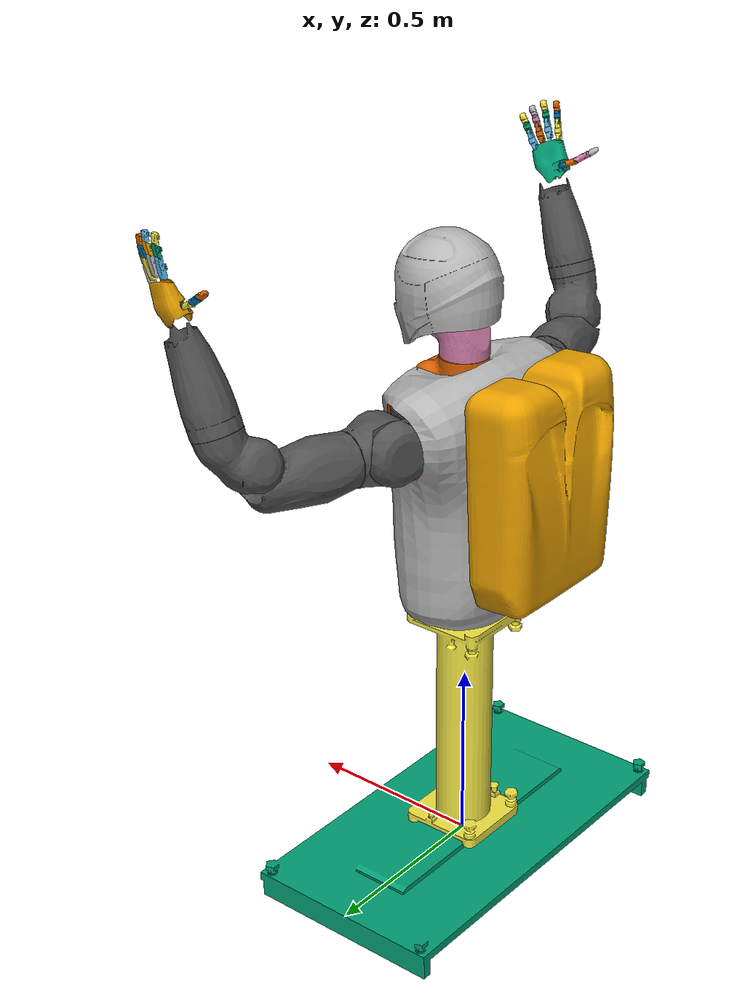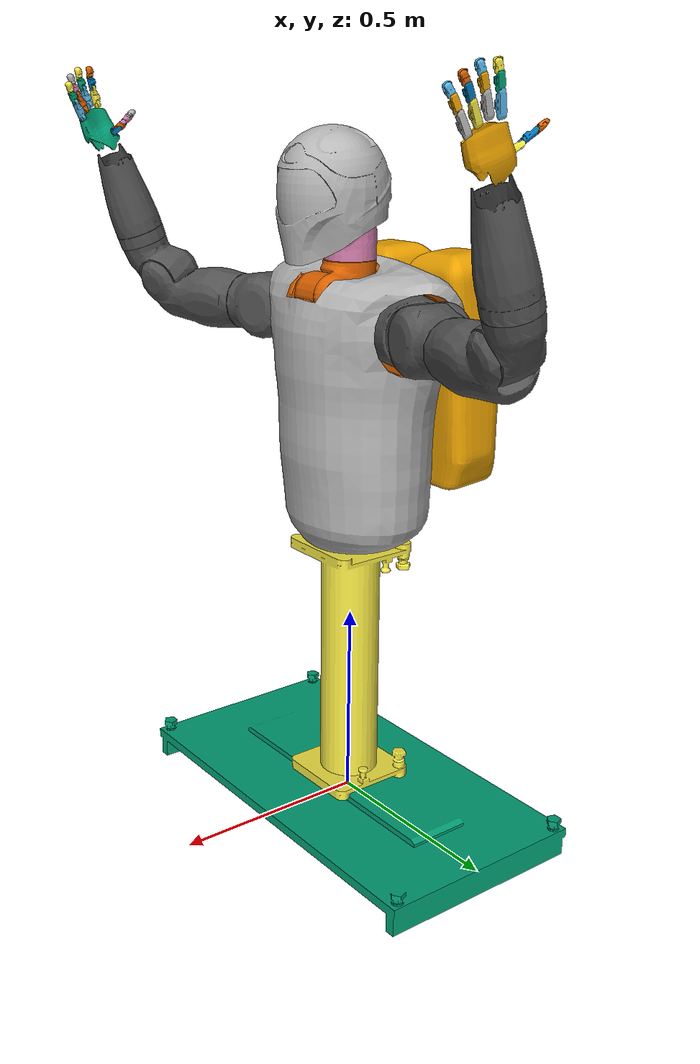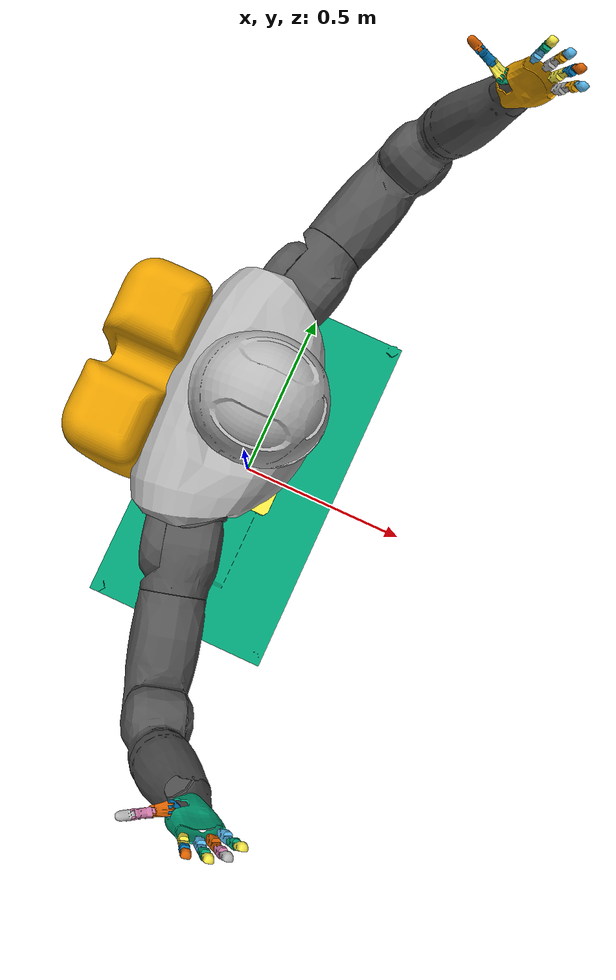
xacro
<?xml version="1.0" ?>

<robot name="r2" xmlns:controller="http://www.ros.org/wiki/controller"
			xmlns:interface="http://www.ros.org/wiki/interface"
			xmlns:sensor="http://www.ros.org/wiki/sensor"
			xmlns:xacro="http://www.ros.org/wiki/xacro">

  <xacro:property name="robot_name" value= "/r2/"/>

  <include filename="$(find r2_description)/robots/r2.urdf.xacro" />

  <include filename="$(find r2_description)/urdf/r2.gazebo.xacro" />
  <include filename="$(find r2_description)/urdf/sensors/r2.gazebo.sensors.xacro" />

  <include filename="$(find r2_description)/urdf/gazebo_plugins/r2.transmissions.xacro" />
  <include filename="$(find r2_description)/urdf/gazebo_plugins/r2.gazebo.controller.xacro" />

</robot>

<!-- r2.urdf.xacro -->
<robot name="r2" xmlns:xacro="http://www.ros.org/wiki/xacro">

  <xacro:property name="robot_name" value= "/r2/"/>

  <include filename="$(find r2_description)/urdf/models/r2.common.xacro" />
  <include filename="$(find r2_description)/urdf/models/r2.base.xacro" />

  <include filename="$(find r2_description)/urdf/models/r2.body.xacro" />
  <include filename="$(find r2_description)/urdf/models/r2.head.xacro" />

  <include filename="$(find r2_description)/urdf/models/r2.left_arm.xacro" />
  <include filename="$(find r2_description)/urdf/models/r2.left_hand.xacro" />

  <include filename="$(find r2_description)/urdf/models/r2.right_arm.xacro" />
  <include filename="$(find r2_description)/urdf/models/r2.right_hand.xacro" />

</robot>

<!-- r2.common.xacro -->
<robot>

  <material name="white">
    <color rgba="1.0 1.0 1.0 1.0"/>
  </material>

  <material name="dirty_white">
    <color rgba="0.322 0.322 0.322 1.0"/>
  </material>

  <material name="gold">
    <color rgba=".878 .49 0.008 1"/>
  </material>

  <material name="steel">
    <color rgba=".7 .7 .7 1"/>
  </material>

  <material name="blue">
    <color rgba="0 0 0.8 1"/>
  </material>

  <macro name="non_visual_link" params="name">
    <link name="${name}">
      <inertial>
        <mass value="0.01"/>
        <inertia ixx="0.0001" ixy="0.0" ixz="0.0" iyy="0.0001" iyz="0.0" izz="0.0001"/>
      </inertial>
    </link>
  </macro>

</robot>

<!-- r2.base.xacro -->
<robot>

  <link name="world"/>

  <joint name="${robot_name}fixed/world/robot_world" type="fixed">
    <parent link="world"/>
    <child link="${robot_name}robot_world"/>
    <origin rpy="0.0 0.0 0.0" xyz="0.0 0.0 0.0"/>
  </joint>

  <link name="${robot_name}robot_world">
    <inertial>
      <mass value="1"/>
      <inertia ixx="1" ixy="0.0" ixz="0.0" iyy="1" iyz="0.0" izz="1"/>
    </inertial>
  </link>

  <joint name="${robot_name}fixed/robot_world/baseplate" type="fixed">
    <parent link="${robot_name}robot_world"/>
    <child link="${robot_name}baseplate"/>
    <origin rpy="0.0 0 3.14159" xyz="0.0 0.0 0.0"/>
  </joint>

  <link name="${robot_name}baseplate">
    <visual>
      <geometry>
        <mesh filename="package://r2_description/meshes/Stanchion_Baseplate.dae"/>
      </geometry>
      <origin xyz="0.0 0.0 0.0" rpy="1.57 0 1.57"/>
    </visual>
    <collision>
      <geometry>
        <mesh filename="package://r2_description/meshes/Stanchion_Baseplate.dae" scale=".01 .01 .01"/>
      </geometry>
      <origin xyz="0.0 0.0 0.0" rpy="1.57 0 1.57"/>
    </collision>
    <inertial>
      <mass value="5"/>
      <inertia ixx="1" ixy="0.0" ixz="0.0" iyy="1" iyz="0.0" izz="1"/>
    </inertial>
  </link>

  <joint name="${robot_name}fixed/baseplate/stanchion" type="fixed">
    <parent link="${robot_name}baseplate"/>
    <child link="${robot_name}stanchion"/>
    <origin rpy="0 0 3.14159" xyz="0.0 0.0 .70"/>
  </joint>

  <link name="${robot_name}stanchion">
    <visual>
      <geometry>
        <mesh filename="package://r2_description/meshes/Stanchion.dae"/>
      </geometry>
      <origin xyz="0.0 0.0 0.0" rpy="0 0 0"/>
    </visual>
    <collision>
      <geometry>
        <cylinder length="0.5" radius=".075"/>
      </geometry>
      <origin xyz="0.0 0.0 -0.3" rpy="0 0 0"/>
    </collision>
    <inertial>
      <mass value="50"/>
      <inertia ixx="10" ixy="0.0" ixz="0.0" iyy="10" iyz="0.0" izz="10"/>
    </inertial>
  </link>

  <joint name="${robot_name}fixed/stanchion/robot_base" type="fixed">
    <parent link="${robot_name}stanchion"/>
    <child link="${robot_name}robot_base"/>
   <origin rpy="0 3.14 3.14" xyz="0.0 0.0 0.02"/>
  </joint>

  <non_visual_link name="${robot_name}robot_base"/>

</robot>

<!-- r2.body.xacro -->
<robot>

  <property name="waist_j0_damping" value= "10.0" />
  <property name="waist_j0_friction" value= "0.0" />

  <joint name="${robot_name}waist/joint0" type="revolute">
    <parent link="${robot_name}robot_base"/>
    <child link="${robot_name}waist_center"/>
    <axis xyz="0 0 1"/>
    <origin rpy="0.0 0 0.0" xyz="0.0 0.0 0.0"/>
    <dynamics damping="${waist_j0_damping}" friction="${waist_j0_friction}"/>
    <limit effort="10000000.0" lower="-3.14" upper="3.14" velocity="1000"/>
  </joint>

  <link name="${robot_name}waist_center">
    <visual>
      <geometry>
         <mesh filename="package://r2_description/meshes/Body.dae"/>
      </geometry>
      <origin rpy="-1.57 0 -1.57" xyz="0.02 0.05 -0.5625"/>
    </visual>
    <collision>
      <geometry>
         <mesh filename="package://r2_description/meshes/Body.dae"/>
      </geometry>
      <origin rpy="-1.57 0 -1.57" xyz="0.02 0.05 -0.5625"/>
    </collision>
    <inertial>
      <mass value="10"/>
      <inertia ixx="1" ixy="0.0" ixz="0.0" iyy="1" iyz="0.0" izz="1"/>
    </inertial>
   </link>

  <joint name="${robot_name}fixed/waist_center/robot_reference" type="fixed">
    <parent link="${robot_name}waist_center"/>
    <child link="${robot_name}robot_reference"/>
    <origin rpy="0.0 0 0.0" xyz="0.1234 0.0 0.0"/>
  </joint>

  <joint name="${robot_name}fixed/waist_center/body_cover" type="fixed">
    <parent link="${robot_name}waist_center"/>
    <child link="${robot_name}body_cover"/>
    <origin rpy="0.0 0.0 0.0" xyz="0 0.0 0.0"/>
  </joint>

  <joint name="${robot_name}fixed/waist_center/backpack" type="fixed">
    <parent link="${robot_name}waist_center"/>
    <child link="${robot_name}backpack"/>
    <origin rpy="0.0 0.0 0.0" xyz="0 0.0 0.0"/>
  </joint>

  <joint name="${robot_name}fixed/waist_center/chest_center" type="fixed">
    <parent link="${robot_name}waist_center"/>
    <child link="${robot_name}chest_center"/>
    <origin rpy="0.0 0.0 0.0" xyz="-0.01235 0.0 0.0"/>
  </joint>

  <joint name="${robot_name}fixed/waist_center/left_shoulder_jr3" type="fixed">
    <parent link="${robot_name}waist_center"/>
    <child link="${robot_name}left_shoulder_jr3"/>
    <origin rpy="0.0 -0.0 0.0 " xyz="-0.0240898 -0.0996837 -0.413899"/>
  </joint>

  <joint name="${robot_name}fixed/waist_center/right_shoulder_jr3" type="fixed">
    <parent link="${robot_name}waist_center"/>
    <child link="${robot_name}right_shoulder_jr3"/>
    <origin rpy="0.0 -0.0 0.0 " xyz="-0.0240898 0.0996837 -0.413899"/>
  </joint>

  <non_visual_link name="${robot_name}robot_reference"/>

  <link name="${robot_name}body_cover">
    <visual>
      <geometry>
         <mesh filename="package://r2_description/meshes/Body_Cover.dae"/>
      </geometry>
      <origin rpy="-1.57 0 -1.57" xyz="0.02 0.05 -0.5625"/>
    </visual>
    <collision>
      <geometry>
         <mesh filename="package://r2_description/meshes/Body_Cover.dae"/>
      </geometry>
      <origin rpy="-1.57 0 -1.57" xyz="0.02 0.05 -0.5625"/>
    </collision>
    <inertial>
        <mass value="0.1"/>
        <inertia ixx="0.001" ixy="0.0" ixz="0.0" iyy="0.001" iyz="0.0" izz="0.001"/>
    </inertial>
  </link>

   <link name="${robot_name}backpack">
    <visual>
      <geometry>
         <mesh filename="package://r2_description/meshes/Backpack.dae"/>
      </geometry>
      <origin rpy="0 0 0.25" xyz="0.0 0.0 -0.54"/>
    </visual>
    <collision>
      <geometry>
         <mesh filename="package://r2_description/meshes/Backpack.dae"/>
      </geometry>
      <origin rpy="0 0 0.25" xyz="0.0 0.0 -0.54"/>
    </collision>
    <inertial>
      <mass value="10"/>
      <inertia ixx="1" ixy="0.0" ixz="0.0" iyy="1" iyz="0.0" izz="1"/>
    </inertial>
  </link>

  <non_visual_link name="${robot_name}chest_center"/>

  <non_visual_link name="${robot_name}left_shoulder_jr3"/>

  <non_visual_link name="${robot_name}right_shoulder_jr3"/>

  <joint name="${robot_name}fixed/chest_center/chest_base" type="fixed">
    <parent link="${robot_name}chest_center"/>
    <child link="${robot_name}chest_base"/>
    <origin rpy="0.0 -0.0 0.0 " xyz="-0.05299202 -0.0 -0.5442458"/>
  </joint>

  <non_visual_link name="${robot_name}chest_base"/>

</robot>

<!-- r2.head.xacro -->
<robot>

  <property name="neck_j0_damping" value= "10.0" />
  <property name="neck_j0_friction" value= "0.0" />
  <property name="neck_j1_damping" value= "10.0" />
  <property name="neck_j1_friction" value= "0.0" />
  <property name="neck_j2_damping" value= "10.0" />
  <property name="neck_j2_friction" value= "0.0" />

  <property name="effort_limit" value= "10000.0" />
  <property name="velocity_limit" value= "1000.0" />

  <joint name="${robot_name}neck/joint0" type="revolute">
    <parent link="${robot_name}waist_center"/>
    <child link="${robot_name}neck_base"/>
    <origin rpy=" -1.570796 -0.0 0.0 " xyz=" 0.08636 0.0 -0.6142228 "/>
    <dynamics damping="${neck_j0_damping}" friction="${neck_j0_friction}"/>
    <axis xyz="0 0 1"/>
    <limit effort="${effort_limit}" lower="-0.7" upper="0.175" velocity="${velocity_limit}"/>
  </joint>

  <link name="${robot_name}neck_base">
    <visual>
      <geometry>
         <mesh filename="package://r2_description/meshes/Neck_Lower.dae"/>
      </geometry>
      <origin rpy="-1.57 1.57 0" xyz="0.0 0.0 0.0"/>
    </visual>
    <inertial>
      <mass value=".1"/>
      <inertia ixx=".0010" ixy="0.0" ixz="0.0" iyy=".0010" iyz="0.0" izz=".0010"/>
    </inertial>
    <collision>
      <geometry>
         <mesh filename="package://r2_description/meshes/Neck_Lower.dae"/>
      </geometry>
      <origin rpy="-1.57 1.57 0" xyz="0.0 0.0 0.0"/>
    </collision>
  </link>

  <joint name="${robot_name}neck/joint1" type="revolute">
    <parent link="${robot_name}neck_base"/>
    <child link="${robot_name}neck_lower_pitch"/>
    <origin rpy=" -1.570796 -0.0 0.0 " xyz=" -0.0762 -0.0 0.0 "/>
    <dynamics damping="${neck_j1_damping}" friction="${neck_j1_friction}"/>
    <axis xyz="0 0 1"/>
    <limit effort="${effort_limit}" lower="-1.22" upper="1.22" velocity="${velocity_limit}"/>
  </joint>

  <link name="${robot_name}neck_lower_pitch">
   <visual>
      <geometry>
         <mesh filename="package://r2_description/meshes/Neck_Upper.dae"/>
      </geometry>
      <origin rpy="0 0 1.57" xyz="0.075 0.0 0.0"/>
    </visual>
    <inertial>
      <mass value=".1"/>
      <inertia ixx=".0010" ixy="0.0" ixz="0.0" iyy=".0010" iyz="0.0" izz=".0010"/>
    </inertial>
    <collision>
      <geometry>
         <mesh filename="package://r2_description/meshes/Neck_Upper.dae"/>
      </geometry>
      <origin rpy="0 0 1.57" xyz="0.075 0.0 0.0"/>
    </collision>
  </link>

  <joint name="${robot_name}neck/joint2" type="revolute">
    <parent link="${robot_name}neck_lower_pitch"/>
    <child link="${robot_name}neck_roll"/>
    <origin rpy=" 1.570796 -0.0 0.0 " xyz=" 0.0508 0.0 0.1777619 "/>
    <dynamics damping="${neck_j2_damping}" friction="${neck_j2_friction}"/>
    <axis xyz="0 0 1"/>
    <limit effort="${effort_limit}" lower="-0.7" upper="0.175" velocity="${velocity_limit}"/>
  </joint>

  <link name="${robot_name}neck_roll">
    <visual>
      <geometry>
         <mesh filename="package://r2_description/meshes/Head.dae"/>
      </geometry>
      <origin rpy="0 1.57 0" xyz="-0.0 0.07 0.0"/>
    </visual>
    <collision>
      <geometry>
         <mesh filename="package://r2_description/meshes/Head.dae"/>
      </geometry>
      <origin rpy="0 1.57 0" xyz="-0.0 0.07 0.0"/>
    </collision>
    <inertial>
      <mass value=".1"/>
      <inertia ixx=".0010" ixy="0.0" ixz="0.0" iyy=".0010" iyz="0.0" izz=".0010"/>
    </inertial>
  </link>

  <joint name="${robot_name}fixed/neck_roll/neck_upper_pitch" type="fixed">
    <parent link="${robot_name}neck_roll"/>
    <child link="${robot_name}neck_upper_pitch"/>
    <origin rpy=" 1.570796 -0.0 0.0 " xyz=" 0.0 0.0 0.0 "/>
  </joint>

  <link name="${robot_name}neck_upper_pitch">
    <inertial>
      <mass value=".1"/>
      <inertia ixx=".0010" ixy="0.0" ixz="0.0" iyy=".0010" iyz="0.0" izz=".0010"/>
    </inertial>
  </link>

  <joint name="${robot_name}fixed/neck_upper_pitch/asus_frame" type="fixed">
    <parent link="${robot_name}neck_upper_pitch"/>
    <child link="${robot_name}asus_frame"/>
     <origin rpy="1.50 0.0 1.57 " xyz="0.12 -0.015 -0.14 "/>
  </joint>

  <joint name="${robot_name}fixed/neck_upper_pitch/simulated_asus_frame" type="fixed">
    <parent link="${robot_name}neck_upper_pitch"/>
    <child link="${robot_name}simulated_asus_frame"/>
    <dynamics damping="1.0" />
    <origin rpy="0 0 0" xyz="0.12 -0.015 -0.14 "/>
  </joint>

  <joint name="${robot_name}fixed/neck_upper_pitch/vision_center_frame" type="fixed">
    <parent link="${robot_name}neck_upper_pitch"/>
    <child link="${robot_name}vision_center_frame"/>
    <dynamics damping="1.0" />
    <origin rpy="1.57 -1.57 1.57" xyz=" 0.066675 0.0 -0.116205 "/>
  </joint>

  <!-- actual asus -->
  <link name="${robot_name}asus_frame">
    <inertial>
      <mass value=".01"/>
      <inertia ixx=".0010" ixy="0.0" ixz="0.0" iyy=".0010" iyz="0.0" izz=".0010"/>
    </inertial>
  </link>

  <joint name="${robot_name}fixed/asus_frame/openni_depth_frame" type="fixed">
    <parent link="${robot_name}asus_frame"/>
    <child link="${robot_name}openni_depth_frame"/>
    <origin rpy="1.57 -1.57 0 " xyz="0 0 0 "/>
  </joint>

 <!-- asus default -->
 <link name="${robot_name}openni_depth_frame">
    <inertial>
      <mass value=".01"/>
      <inertia ixx=".0010" ixy="0.0" ixz="0.0" iyy=".0010" iyz="0.0" izz=".0010"/>
    </inertial>
  </link>

 <!-- simulated asus -->
 <link name="${robot_name}simulated_asus_frame">
    <inertial>
      <mass value=".01"/>
      <inertia ixx=".0010" ixy="0.0" ixz="0.0" iyy=".0010" iyz="0.0" izz=".0010"/>
    </inertial>
  </link>

  <!--visions -->
  <link name="${robot_name}vision_center_frame">
    <inertial>
      <mass value=".1"/>
      <inertia ixx=".0010" ixy="0.0" ixz="0.0" iyy=".0010" iyz="0.0" izz=".0010"/>
    </inertial>
  </link>

  <joint name="${robot_name}fixed/vision_center_frame/left_camera_frame" type="fixed">
    <parent link="${robot_name}vision_center_frame"/>
    <child link="${robot_name}left_camera_frame"/>
    <dynamics damping="1.0" />
    <origin rpy="0 0 1.57" xyz="0.0087 0.04887 0.01789"/>
  </joint>

  <joint name="${robot_name}fixed/vision_center_frame/right_camera_frame" type="fixed">
    <parent link="${robot_name}vision_center_frame"/>
    <child link="${robot_name}right_camera_frame"/>
    <dynamics damping="1.0" />
    <origin rpy="0 0 1.57" xyz="0.0087 -0.04887 0.01789"/>
  </joint>

  <link name="${robot_name}left_camera_frame">
    <inertial>
      <mass value=".1"/>
      <inertia ixx=".0010" ixy="0.0" ixz="0.0" iyy=".0010" iyz="0.0" izz=".0010"/>
    </inertial>
  </link>

  <joint name="${robot_name}fixed/left_camera_frame/left_camera_optical_frame" type="fixed">
    <parent link="${robot_name}left_camera_frame"/>
    <child link="${robot_name}left_camera_optical_frame"/>
    <dynamics damping="1.0" />
    <origin rpy="-1.57 -1.57 0" xyz="0 0 0"/>
  </joint>

  <link name="${robot_name}left_camera_optical_frame">
    <inertial>
      <mass value=".1"/>
      <inertia ixx=".0010" ixy="0.0" ixz="0.0" iyy=".0010" iyz="0.0" izz=".0010"/>
    </inertial>
  </link>

  <link name="${robot_name}right_camera_frame">
    <inertial>
      <mass value=".1"/>
      <inertia ixx=".0010" ixy="0.0" ixz="0.0" iyy=".0010" iyz="0.0" izz=".0010"/>
    </inertial>
  </link>

  <joint name="${robot_name}fixed/right_camera_frame/right_camera_optical_frame" type="fixed">
    <parent link="${robot_name}right_camera_frame"/>
    <child link="${robot_name}right_camera_optical_frame"/>
    <dynamics damping="1.0" />
    <origin rpy="-1.57 -1.57 0" xyz="0 0 0"/>
  </joint>

  <link name="${robot_name}right_camera_optical_frame">
    <inertial>
      <mass value=".1"/>
      <inertia ixx=".0010" ixy="0.0" ixz="0.0" iyy=".0010" iyz="0.0" izz=".0010"/>
    </inertial>
  </link>

</robot>

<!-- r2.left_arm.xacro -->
<robot>

  <property name="left_arm_j0_damping" value= "10.0" />
  <property name="left_arm_j0_friction" value= "0.0" />
  <property name="left_arm_j1_damping" value= "10.0" />
  <property name="left_arm_j1_friction" value= "0.0" />
  <property name="left_arm_j2_damping" value= "10.0" />
  <property name="left_arm_j2_friction" value= "0.0" />
  <property name="left_arm_j3_damping" value= "1.0" />
  <property name="left_arm_j3_friction" value= "0.0" />
  <property name="left_arm_j4_damping" value= "1.0" />
  <property name="left_arm_j4_friction" value= "0.0" />
  <property name="left_arm_j5_damping" value= "1.0" />
  <property name="left_arm_j5_friction" value= "0.0" />
  <property name="left_arm_j6_damping" value= "1.0" />
  <property name="left_arm_j6_friction" value= "0.0" />

  <joint name="${robot_name}left_arm/joint0" type="revolute">
    <parent link="${robot_name}chest_base"/>
    <child link="${robot_name}left_shoulder_roll"/>
    <origin rpy=" -1.5664 -0.0 -2.8802 " xyz=" -0.0 -0.0 0.0 "/>
    <axis xyz="0 0 1"/>
    <dynamics damping="${left_arm_j0_damping}" friction="${left_arm_j0_friction}"/>
    <limit effort="100.0" lower="-1.57" upper="1.57" velocity="1000"/>
  </joint>

  <link name="${robot_name}left_shoulder_roll">
    <visual>
      <geometry>
        <mesh filename="package://r2_description/meshes/Left_Shoulder_Upper.dae"/>
      </geometry>
      <material name="dirty_white"/>
      <origin rpy="0 0 1.57" xyz="0 0 .08"/>
    </visual>
    <collision>
      <geometry>
        <mesh filename="package://r2_description/meshes/Left_Shoulder_Upper.dae"/>
      </geometry>
      <origin rpy="0 0 1.57" xyz="0 0 .08"/>
    </collision>
    <inertial>
	<origin xyz="-0.0089916 -0.00131572   0.10287   "/>
        <mass value="6.168856232"/>
        <inertia ixx="0.0198585269"  ixy="-0.0060195977"  ixz="-0.0003950635"  iyy="0.0671900643"  iyz="0.00012683"  izz="0.0634150128"/>
    </inertial>
  </link>

  <joint name="${robot_name}left_arm/joint1" type="revolute">
    <parent link="${robot_name}left_shoulder_roll"/>
    <child link="${robot_name}left_shoulder_pitch"/>
    <origin rpy=" -1.5701 -0.0 1.570796 " xyz=" 0.0 0.0 0.316611 "/>
    <axis xyz="0 0 1"/>
    <dynamics damping="${left_arm_j1_damping}" friction="${left_arm_j1_friction}"/>
    <limit effort="100.0" lower="-1.66" upper=".175" velocity="1000"/>
  </joint>

  <link name="${robot_name}left_shoulder_pitch">
    <visual>
      <geometry>
        <mesh filename="package://r2_description/meshes/Left_Shoulder_Lower.dae"/>
      </geometry>
      <material name="dirty_white"/>
      <origin rpy=".0 0 -1.57" xyz="0 0 0"/>
    </visual>
    <collision>
      <geometry>
        <mesh filename="package://r2_description/meshes/Left_Shoulder_Lower.dae"/>
      </geometry>
      <origin rpy=".0 0 -1.57" xyz="0 0 0"/>
    </collision>
     <inertial>
        <origin xyz="0.037084 -0.00028448   0.0077978   "/>
        <mass value="4.4270615312"/>
        <inertia ixx="0.02701064"  ixy="0.001512947"  ixz="-0.000052382497887"  iyy="0.0113836825"  iyz="0.0000217138622526"  izz="0.0251962741"/>
    </inertial>
  </link>

  <joint name="${robot_name}left_arm/joint2" type="revolute">
    <parent link="${robot_name}left_shoulder_pitch"/>
    <child link="${robot_name}left_upper_arm"/>
    <origin rpy=" 1.57 -0.0 0.0 " xyz=" 0.0 0.0 0.0 "/>
    <axis xyz="0 0 1"/>
    <dynamics damping="${left_arm_j2_damping}" friction="${left_arm_j2_friction}"/>
    <limit effort="100.0" lower="-4.89" upper="-0.79" velocity="1000"/>
  </joint>

  <link name="${robot_name}left_upper_arm">
    <visual>
      <geometry>
        <mesh filename="package://r2_description/meshes/Left_Upper_Arm.dae"/>
      </geometry>
      <material name="dirty_white"/>
      <origin rpy="0 0 3.14" xyz="0 0 .1016"/>
    </visual>
    <collision>
      <geometry>
        <mesh filename="package://r2_description/meshes/Left_Upper_Arm.dae"/>
      </geometry>
      <origin rpy="0 0 3.14" xyz="0 0 .1016"/>
    </collision>
    <inertial>
        <origin xyz="-0.0074168 -0.041402   0.1016   "/>
        <mass value="4.853438359"/>
        <inertia ixx="0.016007389"  ixy="-0.00339462"  ixz="0.0065843922"  iyy="0.0462370652"  iyz="0.0013754064"  izz="0.04214011"/>
    </inertial>
  </link>

  <joint name="${robot_name}left_arm/joint3" type="revolute">
    <parent link="${robot_name}left_upper_arm"/>
    <child link="${robot_name}left_elbow"/>
    <origin rpy=" -1.5748 -0.0 0.0 " xyz=" -0.05437886 -0.0 0.3564382 "/>
    <axis xyz="0 0 1"/>
    <dynamics damping="${left_arm_j3_damping}" friction="${left_arm_j3_friction}"/>
    <limit effort="100.0" lower="-2.79" upper="-.087" velocity="1000"/>
  </joint>

  <link name="${robot_name}left_elbow">
    <visual>
      <geometry>
        <mesh filename="package://r2_description/meshes/Left_Elbow.dae"/>
      </geometry>
      <material name="dirty_white"/>
      <origin rpy="0 0 -1.57" xyz="0 0 0"/>
    </visual>
    <collision>
      <geometry>
        <mesh filename="package://r2_description/meshes/Left_Elbow.dae"/>
      </geometry>
      <origin rpy="0 0 -1.57" xyz="0 0 0"/>
    </collision>
    <inertial>
        <origin xyz="0.026162 0.033782   0.0154432   "/>
        <mass value="2.9710300235"/>
        <inertia ixx="0.0120274897"  ixy="0.0016417085"  ixz="-0.001188117"  iyy="0.0088377175"  iyz="0.0031605083"  izz="0.0105350275"/>
    </inertial>
  </link>

  <joint name="${robot_name}left_arm/joint4" type="revolute">
    <parent link="${robot_name}left_elbow"/>
    <child link="${robot_name}left_lower_arm"/>
    <origin rpy=" 1.5738 -0.0 0.0 " xyz=" 0.0540385 0.0 0.0 "/>
    <axis xyz="0 0 1"/>
    <dynamics damping="${left_arm_j4_damping}" friction="${left_arm_j4_friction}"/>
    <limit effort="100.0" lower="-1.3" upper="4.45" velocity="1000"/>
  </joint>

  <link name="${robot_name}left_lower_arm">
    <visual>
      <geometry>
        <mesh filename="package://r2_description/meshes/Left_Forearm.dae"/>
      </geometry>
      <origin xyz="0 0 0.1"/>
      <material name="dirty_white"/>
    </visual>
    <collision>
      <geometry>
        <mesh filename="package://r2_description/meshes/Left_Forearm.dae"/>
      </geometry>
      <origin xyz="0 0 0.1"/>
    </collision>
    <inertial>
        <origin xyz="0.0003556 -0.00122682   0.17653   "/>
        <mass value="6.939963261"/>
        <inertia ixx="0.0125249771"  ixy="-0.0002446467"  ixz="0.0005208986"  iyy="0.0395063532"  iyz="-0.0001691457"  izz="0.0403842721"/>
    </inertial>
  </link>

  <joint name="${robot_name}left_arm/joint5" type="revolute">
    <parent link="${robot_name}left_lower_arm"/>
    <child link="${robot_name}left_wrist_pitch"/>
    <origin rpy=" -1.5952 -0.0 0.0 " xyz=" 0.0 0.0 0.3570478 "/>
    <axis xyz="0 0 1"/>
    <dynamics damping="${left_arm_j5_damping}" friction="${left_arm_j5_friction}"/>
    <limit effort="100.0" lower="-1.22" upper="1.22" velocity="1000"/>
  </joint>

  <link name="${robot_name}left_wrist_pitch">
    <inertial>
        <origin xyz="-0.004064   0.000000152908   -0.00092202"/>
        <mass value="0.1165732391"/>
        <inertia ixx="0.00005765"  ixy="0.00000000004360"  ixz="0.00000175876"  iyy="0.0000169438359087"  iyz="0.000000054430975458"  izz="0.000044188587603"/>
    </inertial>
  </link>

  <joint name="${robot_name}left_arm/joint6" type="revolute">
    <parent link="${robot_name}left_wrist_pitch"/>
    <child link="${robot_name}left_wrist_yaw"/>
    <origin rpy=" 1.6505 -0.0 -1.5727 " xyz=" -0.00001156 -0.006072621 0.0 "/>
    <axis xyz="0 0 1"/>
    <dynamics damping="${left_arm_j6_damping}" friction="${left_arm_j6_friction}"/>
    <limit effort="100.0" lower="-0.785" upper="0.785" velocity="1000"/>
  </joint>

  <link name="${robot_name}left_wrist_yaw">
    <inertial>
        <origin xyz="-0.00090932   -0.0253746  0.067564     "/>
        <mass value="1.1884120094"/>
        <inertia ixx="0.0044481227"  ixy="0.0003716524"  ixz="0.0001024239"  iyy="0.0030141884"  iyz="0.000101546"  izz="0.001992876"/>
    </inertial>
  </link>

  <joint name="${robot_name}fixed/left_wrist_yaw/left_palm" type="fixed">
    <parent link="${robot_name}left_wrist_yaw"/>
    <child link="${robot_name}left_palm"/>
    <origin rpy=" 0.0 -0.0 -0.014 " xyz=" 0.0 -0.0 0.0 "/>
  </joint>

  <link name="${robot_name}left_palm">
    <visual>
      <geometry>
        <mesh filename="package://r2_description/meshes/Left_Palm.dae"/>
      </geometry>
      <origin xyz="0.0 0.0 -0.0" rpy="3.14 0 1.57"/>
    </visual>
    <collision>
      <geometry>
        <mesh filename="package://r2_description/meshes/Left_Palm.dae"/>
      </geometry>
      <origin xyz="0.0 0.0 -0.0" rpy="3.14 0 1.57"/>
    </collision>
    <inertial>
        <origin xyz="0.067564   -0.0253746   -0.00090932"/>
        <mass value="1.1884120094"/>
        <inertia ixx="0.001992876"  ixy="0.000101546"  ixz="0.0001024239"  iyy="0.0030141884"  iyz="0.0003716524"  izz="0.0044481227"/>
    </inertial>
  </link>

</robot>

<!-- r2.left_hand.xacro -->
<robot>

  <property name="left_arm_hand_thumb_j0_damping" value= "0.1" />
  <property name="left_arm_hand_thumb_j0_friction" value= "0.0" />
  <property name="left_arm_hand_thumb_j1_damping" value= "0.1" />
  <property name="left_arm_hand_thumb_j1_friction" value= "0.0" />
  <property name="left_arm_hand_thumb_j2_damping" value= "0.1" />
  <property name="left_arm_hand_thumb_j2_friction" value= "0.0" />
  <property name="left_arm_hand_thumb_j3_damping" value= "0.1" />
  <property name="left_arm_hand_thumb_j3_friction" value= "0.0" />

  <property name="left_arm_hand_index_j0_damping" value= "0.1" />
  <property name="left_arm_hand_index_j0_friction" value= "0.0" />
  <property name="left_arm_hand_index_j1_damping" value= "0.1" />
  <property name="left_arm_hand_index_j1_friction" value= "0.0" />
  <property name="left_arm_hand_index_j2_damping" value= "0.1" />
  <property name="left_arm_hand_index_j2_friction" value= "0.0" />
  <property name="left_arm_hand_index_j3_damping" value= "0.1" />
  <property name="left_arm_hand_index_j3_friction" value= "0.0" />

  <property name="left_arm_hand_middle_j0_damping" value= "0.1" />
  <property name="left_arm_hand_middle_j0_friction" value= "0.0" />
  <property name="left_arm_hand_middle_j1_damping" value= "0.1" />
  <property name="left_arm_hand_middle_j1_friction" value= "0.0" />
  <property name="left_arm_hand_middle_j2_damping" value= "0.1" />
  <property name="left_arm_hand_middle_j2_friction" value= "0.0" />
  <property name="left_arm_hand_middle_j3_damping" value= "0.1" />
  <property name="left_arm_hand_middle_j3_friction" value= "0.0" />

  <property name="left_arm_hand_ring_j0_damping" value= "0.1" />
  <property name="left_arm_hand_ring_j0_friction" value= "0.0" />
  <property name="left_arm_hand_ring_j1_damping" value= "0.1" />
  <property name="left_arm_hand_ring_j1_friction" value= "0.0" />
  <property name="left_arm_hand_ring_j2_damping" value= "0.1" />
  <property name="left_arm_hand_ring_j2_friction" value= "0.0" />

  <property name="left_arm_hand_little_j0_damping" value= "0.1" />
  <property name="left_arm_hand_little_j0_friction" value= "0.0" />
  <property name="left_arm_hand_little_j1_damping" value= "0.1" />
  <property name="left_arm_hand_little_j1_friction" value= "0.0" />
  <property name="left_arm_hand_little_j2_damping" value= "0.1" />
  <property name="left_arm_hand_little_j2_friction" value= "0.0" />

  <joint name="${robot_name}left_arm/hand/thumb/joint0" type="revolute">
    <parent link="${robot_name}left_wrist_yaw"/>
    <child link="${robot_name}left_thumb_base"/>
    <origin xyz=" 0.03302 0.03048 0.00635 " rpy=" -1.57079632679 -0.0 1.30899702752 " />
    <axis xyz="0 0 1"/>
    <limit effort="10000000.0" lower="-1.2217" upper="0.0" velocity="1000"/>
    <dynamics damping="${left_arm_hand_thumb_j0_damping}" friction="${left_arm_hand_thumb_j0_friction}"/>
  </joint>

  <joint name="${robot_name}fixed/left_index_base/left_index_base" type="fixed">
    <parent link="${robot_name}left_wrist_yaw"/>
    <child link="${robot_name}left_index_base"/>
    <origin xyz=" 0.0994646728 0.0271119346 -0.0161544 " rpy=" 0.0 -0.0 0.122172725275 " />
  </joint>

  <joint name="${robot_name}left_arm/hand/index/joint0" type="revolute">
    <parent link="${robot_name}left_index_base"/>
    <child link="${robot_name}left_index_yaw"/>
    <origin xyz="0.0 0.0 0.0" rpy="0.0 0.0 0.0" />
    <axis xyz="0 0 1"/>
    <limit effort="10000000.0" lower="-0.3491" upper="0.3491" velocity="1000"/>
    <dynamics damping="${left_arm_hand_index_j0_damping}" friction="${left_arm_hand_index_j0_friction}"/>
  </joint>

  <joint name="${robot_name}fixed/left_middle_base/left_middle_base" type="fixed">
    <parent link="${robot_name}left_wrist_yaw"/>
    <child link="${robot_name}left_middle_base"/>
    <origin xyz=" 0.10646537 0.00254 -0.0161544 " rpy=" 0.0 -0.0 0.0 " />
  </joint>

  <joint name="${robot_name}left_arm/hand/middle/joint0" type="revolute">
    <parent link="${robot_name}left_middle_base"/>
    <child link="${robot_name}left_middle_yaw"/>
    <origin xyz="0.0 0.0 0.0" rpy="0.0 0.0 0.0" />
    <axis xyz="0 0 1"/>
    <limit effort="10000000.0" lower="-0.3491" upper="0.3491" velocity="1000"/>
    <dynamics damping="${left_arm_hand_middle_j0_damping}" friction="${left_arm_hand_middle_j0_friction}"/>
  </joint>

  <joint name="${robot_name}left_arm/hand/ring/joint0" type="revolute">
    <parent link="${robot_name}left_wrist_yaw"/>
    <child link="${robot_name}left_ring_proximal"/>
    <origin xyz=" 0.1084570602 -0.0197673468 -0.012319 " rpy=" 1.57079632679 -0.0 -0.122172725275 " />
    <axis xyz="0 0 1"/>
    <limit effort="10000000.0" lower="0" upper="2.9671" velocity="1000"/>
    <dynamics damping="${left_arm_hand_ring_j0_damping}" friction="${left_arm_hand_ring_j0_friction}"/>
  </joint>

  <joint name="${robot_name}left_arm/hand/little/joint0" type="revolute">
    <parent link="${robot_name}left_wrist_yaw"/>
    <child link="${robot_name}left_little_proximal"/>
    <origin xyz=" 0.094635701 -0.0403792436 -0.0060878212 " rpy=" 1.60570321374 -0.0872667473393 -0.17453258148 " />
    <axis xyz="0 0 1"/>
    <limit effort="10000000.0" lower="0" upper="2.9671" velocity="1000"/>
    <dynamics damping="${left_arm_hand_little_j0_damping}" friction="${left_arm_hand_little_j0_friction}"/>
  </joint>

  <link name="${robot_name}left_thumb_base">
    <inertial>
      <mass value=".05"/>
      <inertia ixx=".0010" ixy="0.0" ixz="0.0" iyy=".0010" iyz="0.0" izz=".0010"/>
    </inertial>
  </link>

  <joint name="${robot_name}fixed/left_thumb_base/left_thumb_proximal" type="fixed">
    <parent link="${robot_name}left_thumb_base"/>
    <child link="${robot_name}left_thumb_proximal"/>
    <origin xyz=" 0.011938 0.0 0.0 " rpy=" -1.570796 -0.0 0.0 " />
  </joint>

  <link name="${robot_name}left_thumb_proximal">
    <inertial>
      <mass value=".0010"/>
      <inertia ixx=".0010" ixy="0.0" ixz="0.0" iyy=".0010" iyz="0.0" izz=".0010"/>
    </inertial>
    <visual>
      <geometry>
        <mesh filename="package://r2_description/meshes/Left_Thumb_Carp.dae"/>
      </geometry>
      <origin xyz="-0.01 0.0 0.0" rpy="-1.57 0 0"/>
    </visual>
    <collision>
      <geometry>
        <mesh filename="package://r2_description/meshes/Left_Thumb_Carp.dae"/>
      </geometry>
      <origin xyz="-0.01 0.0 0.0" rpy="-1.57 0 0"/>
    </collision>
  </link>

  <joint name="${robot_name}left_arm/hand/thumb/joint1" type="revolute">
    <parent link="${robot_name}left_thumb_proximal"/>
    <child link="${robot_name}left_thumb_medial_prime"/>
    <origin xyz=" 0.0 0.0 0.0 " rpy=" 0.0 -0.0 0.0 " />
    <axis xyz="0 0 1"/>
    <limit effort="10000000.0" lower="0.0" upper="1.3963" velocity="1000"/>
    <dynamics damping="${left_arm_hand_thumb_j1_damping}" friction="${left_arm_hand_thumb_j1_friction}"/>
  </joint>

  <link name="${robot_name}left_thumb_medial_prime">
    <inertial>
      <mass value=".0010"/>
      <inertia ixx=".0010" ixy="0.0" ixz="0.0" iyy=".0010" iyz="0.0" izz=".0010"/>
    </inertial>
     <visual>
       <geometry>
        <mesh filename="package://r2_description/meshes/Left_Thumb_MtCar.dae"/>
      </geometry>
      <origin xyz="-0.0 0 0.0" rpy="-1.57 -1.57 0"/>
    </visual>
    <collision>
      <geometry>
        <mesh filename="package://r2_description/meshes/Left_Thumb_MtCar.dae"/>
      </geometry>
      <origin xyz="0.0 0.0 0.0" rpy="-1.57 -1.57 0"/>
    </collision>
  </link>

  <joint name="${robot_name}left_arm/hand/thumb/joint2" type="revolute">
    <parent link="${robot_name}left_thumb_medial_prime"/>
    <child link="${robot_name}left_thumb_medial"/>
    <origin xyz=" 0.030734 -0.001905 0.00254 " rpy=" -0.698132284627 -0.0 0.0 " />
    <axis xyz="0 0 1"/>
    <limit effort="10000000.0" lower="0.0" upper="1.2217" velocity="1000"/>
    <dynamics damping="${left_arm_hand_thumb_j2_damping}" friction="${left_arm_hand_thumb_j2_friction}"/>
  </joint>

  <link name="${robot_name}left_thumb_medial">
    <inertial>
      <mass value=".0010"/>
      <inertia ixx=".0010" ixy="0.0" ixz="0.0" iyy=".0010" iyz="0.0" izz=".0010"/>
    </inertial>
    <visual>
       <geometry>
        <mesh filename="package://r2_description/meshes/Thumb_Proximal.dae"/>
      </geometry>
      <origin xyz="0.0 0.0 0.0" rpy="3.14 0 1.57"/>
    </visual>
    <collision>
      <geometry>
        <mesh filename="package://r2_description/meshes/Thumb_Proximal.dae"/>
      </geometry>
      <origin xyz="0.0 0.0 0.0" rpy="3.14 0 1.57"/>
    </collision>
  </link>

  <joint name="${robot_name}left_arm/hand/thumb/joint3" type="revolute">
    <parent link="${robot_name}left_thumb_medial"/>
    <child link="${robot_name}left_thumb_distal"/>
    <origin xyz=" 0.03937 0.0 0.0 " rpy=" 0.0 -0.0 0.0 " />
    <axis xyz="0 0 1"/>
    <limit effort="10000000.0" lower="-0.5236" upper="1.57" velocity="1000"/>
    <dynamics damping="${left_arm_hand_thumb_j3_damping}" friction="${left_arm_hand_thumb_j3_friction}"/>
  </joint>

  <link name="${robot_name}left_thumb_distal">
    <inertial>
      <mass value=".0010"/>
      <inertia ixx=".0010" ixy="0.0" ixz="0.0" iyy=".0010" iyz="0.0" izz=".0010"/>
    </inertial>
    <visual>
       <geometry>
        <mesh filename="package://r2_description/meshes/Thumb_Dist.dae"/>
      </geometry>
      <origin xyz="0.0 0.0 0.0" rpy="3.14 3.14 0"/>
    </visual>
    <collision>
      <geometry>
        <mesh filename="package://r2_description/meshes/Thumb_Dist.dae"/>
      </geometry>
      <origin xyz="0.0 0.0 0.0" rpy="3.14 3.14 0"/>
    </collision>
  </link>

  <joint name="${robot_name}fixed/left_thumb_distal/left_thumb_tip" type="fixed">
    <parent link="${robot_name}left_thumb_distal"/>
    <child link="${robot_name}left_thumb_tip"/>
    <origin xyz=" 0.03302 0.0 0.0 " rpy=" 0.0 -0.0 0.0 " />
  </joint>

  <link name="${robot_name}left_thumb_tip">
    <inertial>
      <mass value=".0010"/>
      <inertia ixx=".0010" ixy="0.0" ixz="0.0" iyy=".0010" iyz="0.0" izz=".0010"/>
    </inertial>
  </link>

  <link name="${robot_name}left_index_base">
    <inertial>
      <mass value=".0010"/>
      <inertia ixx=".0010" ixy="0.0" ixz="0.0" iyy=".0010" iyz="0.0" izz=".0010"/>
    </inertial>
  </link>

  <link name="${robot_name}left_index_yaw">
    <inertial>
      <mass value=".0010"/>
      <inertia ixx=".0010" ixy="0.0" ixz="0.0" iyy=".0010" iyz="0.0" izz=".0010"/>
    </inertial>
  </link>

  <joint name="${robot_name}left_arm/hand/index/joint1" type="revolute">
    <parent link="${robot_name}left_index_yaw"/>
    <child link="${robot_name}left_index_proximal"/>
    <origin xyz=" 0.009652 0.0 0.0 " rpy=" 1.570796 0.0 0.0 " />
    <axis xyz="0 0 1"/>
    <limit effort="10000000.0" lower="0.0" upper="1.57" velocity="1000"/>
    <dynamics damping="${left_arm_hand_index_j1_damping}" friction="${left_arm_hand_index_j1_friction}"/>
  </joint>

  <link name="${robot_name}left_index_proximal">
    <inertial>
      <mass value=".0010"/>
      <inertia ixx=".0010" ixy="0.0" ixz="0.0" iyy=".0010" iyz="0.0" izz=".0010"/>
    </inertial>
    <visual>
      <geometry>
        <mesh filename="package://r2_description/meshes/Finger_Proximal.dae"/>
      </geometry>
      <origin xyz="0.0 0.0 0.0" rpy="0 0 1.57"/>
    </visual>
    <collision>
      <geometry>
        <mesh filename="package://r2_description/meshes/Finger_Proximal.dae"/>
      </geometry>
      <origin xyz="0.0 0.0 0.0" rpy="0 0 1.57"/>
    </collision>
  </link>

  <joint name="${robot_name}left_arm/hand/index/joint2" type="revolute">
    <parent link="${robot_name}left_index_proximal"/>
    <child link="${robot_name}left_index_medial"/>
    <origin xyz=" 0.04445 0.0 0.0 " rpy=" 0.0 -0.0 0.0 " />
    <axis xyz="0 0 1"/>
    <limit effort="10000000.0" lower="0.0" upper="1.57" velocity="1000"/>
    <dynamics damping="${left_arm_hand_index_j2_damping}" friction="${left_arm_hand_index_j2_friction}"/>
  </joint>

  <link name="${robot_name}left_index_medial">
    <inertial>
      <mass value=".0010"/>
      <inertia ixx=".0010" ixy="0.0" ixz="0.0" iyy=".0010" iyz="0.0" izz=".0010"/>
    </inertial>
    <visual>
      <geometry>
        <mesh filename="package://r2_description/meshes/Finger_Mid.dae"/>
      </geometry>
      <origin xyz="0.0 0.0 0.0" rpy="3.14 0 1.57"/>
    </visual>
    <collision>
      <geometry>
        <mesh filename="package://r2_description/meshes/Finger_Mid.dae"/>
      </geometry>
      <origin xyz="0.0 0.0 0.0" rpy="3.14 0 1.57"/>
    </collision>
  </link>

  <joint name="${robot_name}left_arm/hand/index/joint3" type="revolute">
    <parent link="${robot_name}left_index_medial"/>
    <child link="${robot_name}left_index_distal"/>
    <origin xyz=" 0.03048 0.0 0.0 " rpy=" 0.0 -0.0 0.0 " />
    <axis xyz="0 0 1"/>
    <limit effort="10000000.0" lower="0.0" upper="1.57" velocity="1000"/>
    <dynamics damping="${left_arm_hand_index_j3_damping}" friction="${left_arm_hand_index_j3_friction}"/>
  </joint>

  <link name="${robot_name}left_index_distal">
    <inertial>
      <mass value=".0010"/>
      <inertia ixx=".0010" ixy="0.0" ixz="0.0" iyy=".0010" iyz="0.0" izz=".0010"/>
    </inertial>
    <visual>
      <geometry>
        <mesh filename="package://r2_description/meshes/Finger_Dist.dae"/>
      </geometry>
      <origin xyz="0.0 0.0 0.0" rpy="0 -1.57 0"/>
    </visual>
    <collision>
      <geometry>
        <mesh filename="package://r2_description/meshes/Finger_Dist.dae"/>
      </geometry>
      <origin xyz="0.0 0.0 0.0" rpy="0 -1.57 0"/>
    </collision>
  </link>

  <joint name="${robot_name}fixed/left_index_distal/left_index_tip" type="fixed">
    <parent link="${robot_name}left_index_distal"/>
    <child link="${robot_name}left_index_tip"/>
    <origin xyz=" 0.024638 0.0 0.0 " rpy=" 0.0 -0.0 0.0 " />
  </joint>

  <link name="${robot_name}left_index_tip">
    <inertial>
      <mass value=".0010"/>
      <inertia ixx=".0010" ixy="0.0" ixz="0.0" iyy=".0010" iyz="0.0" izz=".0010"/>
    </inertial>
  </link>

  <link name="${robot_name}left_middle_base">
    <inertial>
      <mass value=".0010"/>
      <inertia ixx=".0010" ixy="0.0" ixz="0.0" iyy=".0010" iyz="0.0" izz=".0010"/>
    </inertial>
  </link>

  <link name="${robot_name}left_middle_yaw">
    <inertial>
      <mass value=".0010"/>
      <inertia ixx=".0010" ixy="0.0" ixz="0.0" iyy=".0010" iyz="0.0" izz=".0010"/>
    </inertial>
  </link>

  <joint name="${robot_name}left_arm/hand/middle/joint1" type="revolute">
    <parent link="${robot_name}left_middle_yaw"/>
    <child link="${robot_name}left_middle_proximal"/>
    <origin xyz=" 0.009652 0.0 0.0 " rpy=" 1.570796 -0.0 0.0 " />
    <axis xyz="0 0 1"/>
    <limit effort="10000000.0" lower="0.0" upper="1.57" velocity="1000"/>
    <dynamics damping="${left_arm_hand_middle_j1_damping}" friction="${left_arm_hand_middle_j1_friction}"/>
  </joint>

  <link name="${robot_name}left_middle_proximal">
    <inertial>
      <mass value=".0010"/>
      <inertia ixx=".0010" ixy="0.0" ixz="0.0" iyy=".0010" iyz="0.0" izz=".0010"/>
    </inertial>
    <visual>
      <geometry>
        <mesh filename="package://r2_description/meshes/Finger_Proximal.dae"/>
      </geometry>
      <origin xyz="0.0 0.0 0.0" rpy="0 0 1.57"/>
    </visual>
    <collision>
      <geometry>
        <mesh filename="package://r2_description/meshes/Finger_Proximal.dae"/>
      </geometry>
      <origin xyz="0.0 0.0 0.0" rpy="0 0 1.57"/>
    </collision>
  </link>

  <joint name="${robot_name}left_arm/hand/middle/joint2" type="revolute">
    <parent link="${robot_name}left_middle_proximal"/>
    <child link="${robot_name}left_middle_medial"/>
    <origin xyz=" 0.04445 0.0 0.0 " rpy=" 0.0 -0.0 0.0 " />
    <axis xyz="0 0 1"/>
    <limit effort="10000000.0" lower="0.0" upper="1.57" velocity="1000"/>
    <dynamics damping="${left_arm_hand_middle_j2_damping}" friction="${left_arm_hand_middle_j2_friction}"/>
  </joint>

  <link name="${robot_name}left_middle_medial">
    <inertial>
      <mass value=".0010"/>
      <inertia ixx=".0010" ixy="0.0" ixz="0.0" iyy=".0010" iyz="0.0" izz=".0010"/>
    </inertial>
    <visual>
      <geometry>
        <mesh filename="package://r2_description/meshes/Finger_Mid.dae"/>
      </geometry>
      <origin xyz="0.0 0.0 0.0" rpy="3.14 0 1.57"/>
    </visual>
    <collision>
      <geometry>
        <mesh filename="package://r2_description/meshes/Finger_Mid.dae"/>
      </geometry>
      <origin xyz="0.0 0.0 0.0" rpy="3.14 0 1.57"/>
    </collision>
  </link>

  <joint name="${robot_name}left_arm/hand/middle/joint3" type="revolute">
    <parent link="${robot_name}left_middle_medial"/>
    <child link="${robot_name}left_middle_distal"/>
    <origin xyz=" 0.03048 0.0 0.0 " rpy=" 0.0 -0.0 0.0 " />
    <axis xyz="0 0 1"/>
    <limit effort="10000000.0" lower="0.0" upper="1.57" velocity="1000"/>
    <dynamics damping="${left_arm_hand_middle_j3_damping}" friction="${left_arm_hand_middle_j3_friction}"/>
  </joint>

  <link name="${robot_name}left_middle_distal">
    <inertial>
      <mass value=".0010"/>
      <inertia ixx=".0010" ixy="0.0" ixz="0.0" iyy=".0010" iyz="0.0" izz=".0010"/>
    </inertial>
    <visual>
      <geometry>
        <mesh filename="package://r2_description/meshes/Finger_Dist.dae"/>
      </geometry>
      <origin xyz="0.0 0.0 0.0" rpy="0 -1.57 0"/>
    </visual>
    <collision>
      <geometry>
        <mesh filename="package://r2_description/meshes/Finger_Dist.dae"/>
      </geometry>
      <origin xyz="0.0 0.0 0.0" rpy="0 -1.57 0"/>
    </collision>
  </link>

  <joint name="${robot_name}fixed/left_middle_distal/left_middle_tip" type="fixed">
    <parent link="${robot_name}left_middle_distal"/>
    <child link="${robot_name}left_middle_tip"/>
    <origin xyz=" 0.024638 0.0 0.0 " rpy=" 0.0 -0.0 0.0 " />
  </joint>

  <link name="${robot_name}left_middle_tip">
    <inertial>
      <mass value=".0010"/>
      <inertia ixx=".0010" ixy="0.0" ixz="0.0" iyy=".0010" iyz="0.0" izz=".0010"/>
    </inertial>
  </link>

  <link name="${robot_name}left_ring_proximal">
    <inertial>
      <mass value=".0010"/>
      <inertia ixx=".0010" ixy="0.0" ixz="0.0" iyy=".0010" iyz="0.0" izz=".0010"/>
    </inertial>
    <visual>
      <geometry>
        <mesh filename="package://r2_description/meshes/Finger_Proximal.dae"/>
      </geometry>
      <origin xyz="0.0 0.0 0.0" rpy="0 0 1.57"/>
    </visual>
    <collision>
      <geometry>
        <mesh filename="package://r2_description/meshes/Finger_Proximal.dae"/>
      </geometry>
      <origin xyz="0.0 0.0 0.0" rpy="0 0 1.57"/>
    </collision>
  </link>

  <joint name="${robot_name}left_arm/hand/ring/joint1" type="revolute">
    <parent link="${robot_name}left_ring_proximal"/>
    <child link="${robot_name}left_ring_medial"/>
    <origin xyz=" 0.04445 0.0 0.0 " rpy=" 0.0 -0.0 0.0 " />
    <axis xyz="0 0 1"/>
    <limit effort="10000000.0" lower="0" upper="2.9671" velocity="1000"/>
    <dynamics damping="${left_arm_hand_ring_j1_damping}" friction="${left_arm_hand_ring_j1_friction}"/>
  </joint>

  <link name="${robot_name}left_ring_medial">
    <inertial>
      <mass value=".0010"/>
      <inertia ixx=".0010" ixy="0.0" ixz="0.0" iyy=".0010" iyz="0.0" izz=".0010"/>
    </inertial>
    <visual>
      <geometry>
        <mesh filename="package://r2_description/meshes/Finger_Mid.dae"/>
      </geometry>
      <origin xyz="0.0 0.0 0.0" rpy="3.14 0 1.57"/>
    </visual>
    <collision>
      <geometry>
        <mesh filename="package://r2_description/meshes/Finger_Mid.dae"/>
      </geometry>
      <origin xyz="0.0 0.0 0.0" rpy="3.14 0 1.57"/>
    </collision>
  </link>

  <joint name="${robot_name}left_arm/hand/ring/joint2" type="revolute">
    <parent link="${robot_name}left_ring_medial"/>
    <child link="${robot_name}left_ring_distal"/>
    <origin xyz=" 0.03048 0.0 0.0 " rpy=" 0.0 -0.0 0.0 " />
    <axis xyz="0 0 1"/>
    <limit effort="10000000.0" lower="0" upper="2.9671" velocity="1000"/>
    <dynamics damping="${left_arm_hand_ring_j2_damping}" friction="${left_arm_hand_ring_j2_friction}"/>
  </joint>

  <link name="${robot_name}left_ring_distal">
    <inertial>
      <mass value=".0010"/>
      <inertia ixx=".0010" ixy="0.0" ixz="0.0" iyy=".0010" iyz="0.0" izz=".0010"/>
    </inertial>
    <visual>
      <geometry>
        <mesh filename="package://r2_description/meshes/Finger_Dist.dae"/>
      </geometry>
      <origin xyz="0.0 0.0 0.0" rpy="0 -1.57 0"/>
    </visual>
    <collision>
      <geometry>
        <mesh filename="package://r2_description/meshes/Finger_Dist.dae"/>
      </geometry>
      <origin xyz="0.0 0.0 0.0" rpy="0 -1.57 0"/>
    </collision>
  </link>

  <joint name="${robot_name}fixed/left_ring_distal/left_ring_tip" type="fixed">
    <parent link="${robot_name}left_ring_distal"/>
    <child link="${robot_name}left_ring_tip"/>
    <origin xyz=" 0.024638 0.0 0.0 " rpy=" 0.0 -0.0 0.0 " />
  </joint>

  <link name="${robot_name}left_ring_tip">
    <inertial>
      <mass value=".0010"/>
      <inertia ixx=".0010" ixy="0.0" ixz="0.0" iyy=".0010" iyz="0.0" izz=".0010"/>
    </inertial>
  </link>

  <link name="${robot_name}left_little_proximal">
    <inertial>
      <mass value=".0010"/>
      <inertia ixx=".0010" ixy="0.0" ixz="0.0" iyy=".0010" iyz="0.0" izz=".0010"/>
    </inertial>
    <visual>
      <geometry>
        <mesh filename="package://r2_description/meshes/Finger_Proximal.dae"/>
      </geometry>
      <origin xyz="0.0 0.0 0.0" rpy="0 0 1.57"/>
    </visual>
    <collision>
      <geometry>
        <mesh filename="package://r2_description/meshes/Finger_Proximal.dae"/>
      </geometry>
      <origin xyz="0.0 0.0 0.0" rpy="0 0 1.57"/>
    </collision>
  </link>

  <joint name="${robot_name}left_arm/hand/little/joint1" type="revolute">
    <parent link="${robot_name}left_little_proximal"/>
    <child link="${robot_name}left_little_medial"/>
    <origin xyz=" 0.04445 0.0 0.0 " rpy=" 0.0 -0.0 0.0 " />
    <axis xyz="0 0 1"/>
    <limit effort="10000000.0" lower="0" upper="2.9671" velocity="1000"/>
    <dynamics damping="${left_arm_hand_little_j1_damping}" friction="${left_arm_hand_little_j1_friction}"/>
  </joint>

  <link name="${robot_name}left_little_medial">
    <inertial>
      <mass value=".0010"/>
      <inertia ixx=".0010" ixy="0.0" ixz="0.0" iyy=".0010" iyz="0.0" izz=".0010"/>
    </inertial>
    <visual>
      <geometry>
        <mesh filename="package://r2_description/meshes/Finger_Mid.dae"/>
      </geometry>
      <origin xyz="0.0 0.0 0.0" rpy="3.14 0 1.57"/>
    </visual>
    <collision>
      <geometry>
        <mesh filename="package://r2_description/meshes/Finger_Mid.dae"/>
      </geometry>
      <origin xyz="0.0 0.0 0.0" rpy="3.14 0 1.57"/>
    </collision>
  </link>

  <joint name="${robot_name}left_arm/hand/little/joint2" type="revolute">
    <parent link="${robot_name}left_little_medial"/>
    <child link="${robot_name}left_little_distal"/>
    <origin xyz=" 0.03048 0.0 0.0 " rpy=" 0.0 -0.0 0.0 " />
    <axis xyz="0 0 1"/>
    <limit effort="10000000.0" lower="0" upper="2.9671" velocity="1000"/>
    <dynamics damping="${left_arm_hand_little_j2_damping}" friction="${left_arm_hand_little_j2_friction}"/>
  </joint>

  <link name="${robot_name}left_little_distal">
    <inertial>
      <mass value=".0010"/>
      <inertia ixx=".0010" ixy="0.0" ixz="0.0" iyy=".0010" iyz="0.0" izz=".0010"/>
    </inertial>
    <visual>
      <geometry>
        <mesh filename="package://r2_description/meshes/Finger_Dist.dae"/>
      </geometry>
      <origin xyz="0.0 0.0 0.0" rpy="0 -1.57 0"/>
    </visual>
    <collision>
      <geometry>
        <mesh filename="package://r2_description/meshes/Finger_Dist.dae"/>
      </geometry>
      <origin xyz="0.0 0.0 0.0" rpy="0 -1.57 0"/>
    </collision>
  </link>

  <joint name="${robot_name}fixed/left_little_distal/left_little_tip" type="fixed">
    <parent link="${robot_name}left_little_distal"/>
    <child link="${robot_name}left_little_tip"/>
    <origin xyz=" 0.024638 0.0 0.0 " rpy=" 0.0 -0.0 0.0 " />
  </joint>

  <link name="${robot_name}left_little_tip">
    <inertial>
      <mass value=".0010"/>
      <inertia ixx=".0010" ixy="0.0" ixz="0.0" iyy=".0010" iyz="0.0" izz=".0010"/>
    </inertial>
  </link>

</robot>
